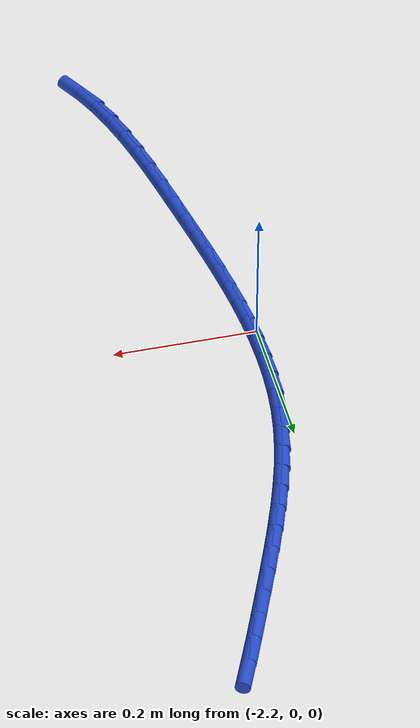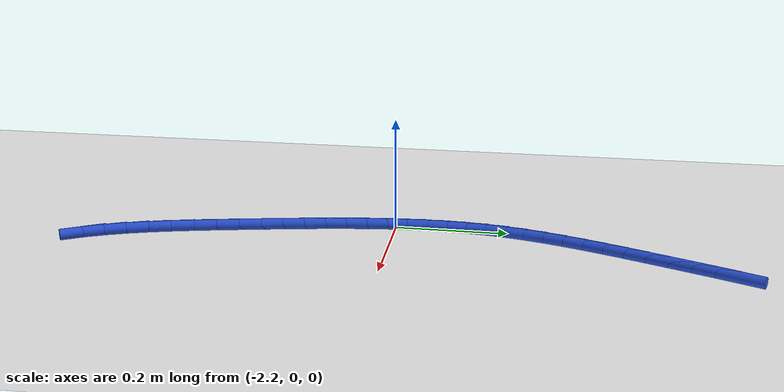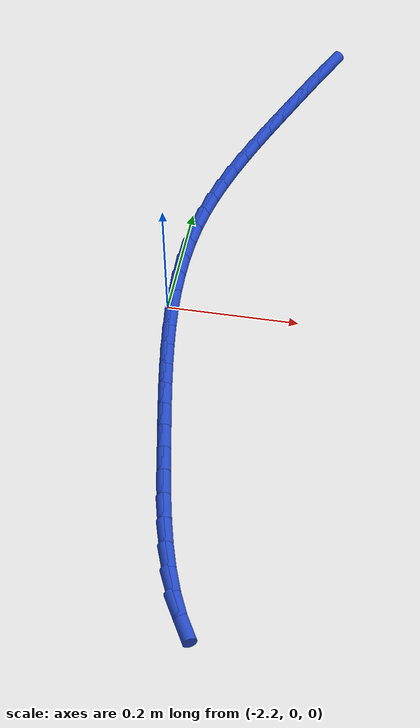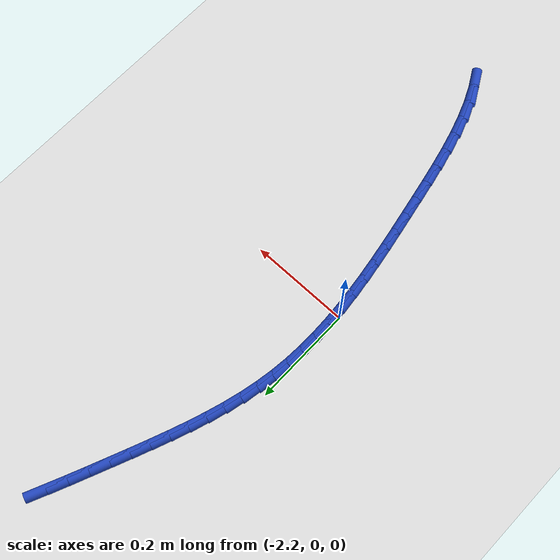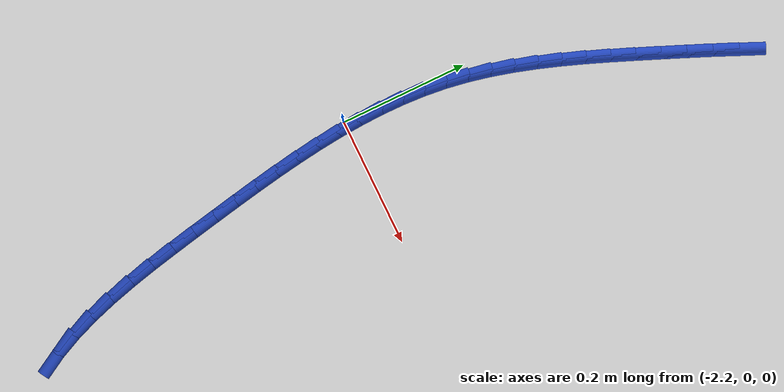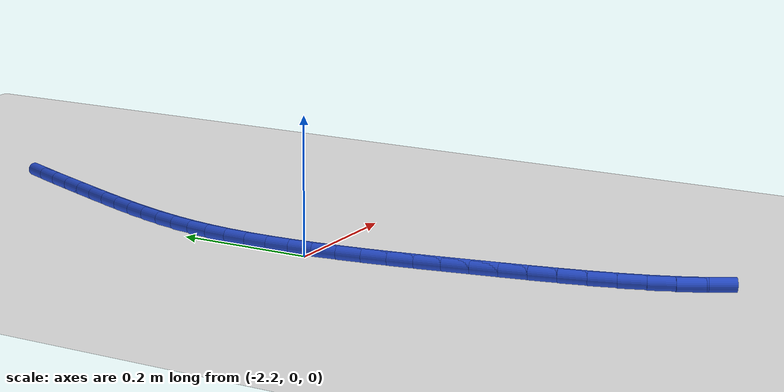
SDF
<sdf version="1.6">
 <world name="default">
  <model name="ground_plane">
   <static>1</static>
   <link name="link">
    <collision name="collision">
     <geometry><plane><normal>0 0 1</normal><size>100 100</size></plane></geometry>
     <surface><friction><ode><mu>100</mu><mu2>50</mu2></ode></friction></surface>
    </collision>
    <visual name="visual">
     <cast_shadows>0</cast_shadows>
     <geometry><plane><normal>0 0 1</normal><size>100 100</size></plane></geometry>
     <material>
      <script><uri>file://media/materials/scripts/gazebo.material</uri><name>Gazebo/WhiteGlow</name></script>
     </material>
    </visual>
   </link>
  </model>
  <model name="line">
   <link name="link_78">
    <pose>-2.039724899684198 0.5842032469601501 0.01 0 1.57 1.1546603331213603</pose>
    <collision name="collision">
     <geometry><cylinder><radius>0.01</radius><length>0.08</length></cylinder></geometry>
    </collision>
    <visual name="visual">
     <material>
      <script><name>Gazebo/Blue</name><uri>file://media/materials/scripts/gazebo.material</uri></script>
     </material>
     <geometry><cylinder><radius>0.01</radius><length>0.08</length></cylinder></geometry>
    </visual>
   </link>
   <link name="link_79">
    <pose>-2.0559129583077382 0.5475741976965427 0.01 0 1.57 1.1677503929884825</pose>
    <collision name="collision">
     <geometry><cylinder><radius>0.01</radius><length>0.08</length></cylinder></geometry>
    </collision>
    <visual name="visual">
     <material>
      <script><name>Gazebo/Blue</name><uri>file://media/materials/scripts/gazebo.material</uri></script>
     </material>
     <geometry><cylinder><radius>0.01</radius><length>0.08</length></cylinder></geometry>
    </visual>
   </link>
   <link name="link_80">
    <pose>-2.0715541158840853 0.510891299024669 0.01 0 1.57 1.1737245022381324</pose>
    <collision name="collision">
     <geometry><cylinder><radius>0.01</radius><length>0.08</length></cylinder></geometry>
    </collision>
    <visual name="visual">
     <material>
      <script><name>Gazebo/Blue</name><uri>file://media/materials/scripts/gazebo.material</uri></script>
     </material>
     <geometry><cylinder><radius>0.01</radius><length>0.08</length></cylinder></geometry>
    </visual>
   </link>
   <link name="link_81">
    <pose>-2.0868060402968833 0.47452054825259055 0.01 0 1.57 1.175988209759713</pose>
    <collision name="collision">
     <geometry><cylinder><radius>0.01</radius><length>0.08</length></cylinder></geometry>
    </collision>
    <visual name="visual">
     <material>
      <script><name>Gazebo/Blue</name><uri>file://media/materials/scripts/gazebo.material</uri></script>
     </material>
     <geometry><cylinder><radius>0.01</radius><length>0.08</length></cylinder></geometry>
    </visual>
   </link>
   <link name="link_82">
    <pose>-2.1017310544813035 0.4387022290538202 0.01 0 1.57 1.1826501950434787</pose>
    <collision name="collision">
     <geometry><cylinder><radius>0.01</radius><length>0.08</length></cylinder></geometry>
    </collision>
    <visual name="visual">
     <material>
      <script><name>Gazebo/Blue</name><uri>file://media/materials/scripts/gazebo.material</uri></script>
     </material>
     <geometry><cylinder><radius>0.01</radius><length>0.08</length></cylinder></geometry>
    </visual>
   </link>
   <link name="link_83">
    <pose>-2.116171339071557 0.4033863644303252 0.01 0 1.57 1.1951134654090376</pose>
    <collision name="collision">
     <geometry><cylinder><radius>0.01</radius><length>0.08</length></cylinder></geometry>
    </collision>
    <visual name="visual">
     <material>
      <script><name>Gazebo/Blue</name><uri>file://media/materials/scripts/gazebo.material</uri></script>
     </material>
     <geometry><cylinder><radius>0.01</radius><length>0.08</length></cylinder></geometry>
    </visual>
   </link>
   <link name="link_84">
    <pose>-2.1299381038356775 0.3684821418682454 0.01 0 1.57 1.2136571490403052</pose>
    <collision name="collision">
     <geometry><cylinder><radius>0.01</radius><length>0.08</length></cylinder></geometry>
    </collision>
    <visual name="visual">
     <material>
      <script><name>Gazebo/Blue</name><uri>file://media/materials/scripts/gazebo.material</uri></script>
     </material>
     <geometry><cylinder><radius>0.01</radius><length>0.08</length></cylinder></geometry>
    </visual>
   </link>
   <link name="link_85">
    <pose>-2.1428425585416986 0.3338987488537224 0.01 0 1.57 1.2385453255192842</pose>
    <collision name="collision">
     <geometry><cylinder><radius>0.01</radius><length>0.08</length></cylinder></geometry>
    </collision>
    <visual name="visual">
     <material>
      <script><name>Gazebo/Blue</name><uri>file://media/materials/scripts/gazebo.material</uri></script>
     </material>
     <geometry><cylinder><radius>0.01</radius><length>0.08</length></cylinder></geometry>
    </visual>
   </link>
   <link name="link_86">
    <pose>-2.1546959129576537 0.299545372872897 0.01 0 1.57 1.2700021255067369</pose>
    <collision name="collision">
     <geometry><cylinder><radius>0.01</radius><length>0.08</length></cylinder></geometry>
    </collision>
    <visual name="visual">
     <material>
      <script><name>Gazebo/Blue</name><uri>file://media/materials/scripts/gazebo.material</uri></script>
     </material>
     <geometry><cylinder><radius>0.01</radius><length>0.08</length></cylinder></geometry>
    </visual>
   </link>
   <link name="link_87">
    <pose>-2.1653093768515785 0.2653312014119097 0.01 0 1.57 1.3081754069231255</pose>
    <collision name="collision">
     <geometry><cylinder><radius>0.01</radius><length>0.08</length></cylinder></geometry>
    </collision>
    <visual name="visual">
     <material>
      <script><name>Gazebo/Blue</name><uri>file://media/materials/scripts/gazebo.material</uri></script>
     </material>
     <geometry><cylinder><radius>0.01</radius><length>0.08</length></cylinder></geometry>
    </visual>
   </link>
   <link name="link_88">
    <pose>-2.1744941599915055 0.23116542195690135 0.01 0 1.57 1.3530889361663747</pose>
    <collision name="collision">
     <geometry><cylinder><radius>0.01</radius><length>0.08</length></cylinder></geometry>
    </collision>
    <visual name="visual">
     <material>
      <script><name>Gazebo/Blue</name><uri>file://media/materials/scripts/gazebo.material</uri></script>
     </material>
     <geometry><cylinder><radius>0.01</radius><length>0.08</length></cylinder></geometry>
    </visual>
   </link>
   <link name="link_89">
    <pose>-2.1820614721454685 0.19695722199401292 0.01 0 1.57 1.4045818100482856</pose>
    <collision name="collision">
     <geometry><cylinder><radius>0.01</radius><length>0.08</length></cylinder></geometry>
    </collision>
    <visual name="visual">
     <material>
      <script><name>Gazebo/Blue</name><uri>file://media/materials/scripts/gazebo.material</uri></script>
     </material>
     <geometry><cylinder><radius>0.01</radius><length>0.08</length></cylinder></geometry>
    </visual>
   </link>
   <link name="link_90">
    <pose>-2.1878226658184774 0.16261581508148082 0.01 0 1.57 1.4598515042055298</pose>
    <collision name="collision">
     <geometry><cylinder><radius>0.01</radius><length>0.08</length></cylinder></geometry>
    </collision>
    <visual name="visual">
     <material>
      <script><name>Gazebo/Blue</name><uri>file://media/materials/scripts/gazebo.material</uri></script>
     </material>
     <geometry><cylinder><radius>0.01</radius><length>0.08</length></cylinder></geometry>
    </visual>
   </link>
   <link name="link_91">
    <pose>-2.1916716500553246 0.1280654944158227 0.01 0 1.57 1.5119010819180472</pose>
    <collision name="collision">
     <geometry><cylinder><radius>0.01</radius><length>0.08</length></cylinder></geometry>
    </collision>
    <visual name="visual">
     <material>
      <script><name>Gazebo/Blue</name><uri>file://media/materials/scripts/gazebo.material</uri></script>
     </material>
     <geometry><cylinder><radius>0.01</radius><length>0.08</length></cylinder></geometry>
    </visual>
   </link>
   <link name="link_92">
    <pose>-2.193723258459866 0.09327090690081233 0.01 0 1.57 1.5592297276331855</pose>
    <collision name="collision">
     <geometry><cylinder><radius>0.01</radius><length>0.08</length></cylinder></geometry>
    </collision>
    <visual name="visual">
     <material>
      <script><name>Gazebo/Blue</name><uri>file://media/materials/scripts/gazebo.material</uri></script>
     </material>
     <geometry><cylinder><radius>0.01</radius><length>0.08</length></cylinder></geometry>
    </visual>
   </link>
   <link name="link_93">
    <pose>-2.194128888597899 0.05820337815182771 0.01 0 1.57 -1.5400178982549504</pose>
    <collision name="collision">
     <geometry><cylinder><radius>0.01</radius><length>0.08</length></cylinder></geometry>
    </collision>
    <visual name="visual">
     <material>
      <script><name>Gazebo/Blue</name><uri>file://media/materials/scripts/gazebo.material</uri></script>
     </material>
     <geometry><cylinder><radius>0.01</radius><length>0.08</length></cylinder></geometry>
    </visual>
   </link>
   <link name="link_94">
    <pose>-2.1930399380352212 0.022834233784245865 0.01 0 1.57 -1.502773364476517</pose>
    <collision name="collision">
     <geometry><cylinder><radius>0.01</radius><length>0.08</length></cylinder></geometry>
    </collision>
    <visual name="visual">
     <material>
      <script><name>Gazebo/Blue</name><uri>file://media/materials/scripts/gazebo.material</uri></script>
     </material>
     <geometry><cylinder><radius>0.01</radius><length>0.08</length></cylinder></geometry>
    </visual>
   </link>
   <link name="link_95">
    <pose>-2.190607804337632 -0.012865200586555126 0.01 0 1.57 -1.4706312713148522</pose>
    <collision name="collision">
     <geometry><cylinder><radius>0.01</radius><length>0.08</length></cylinder></geometry>
    </collision>
    <visual name="visual">
     <material>
      <script><name>Gazebo/Blue</name><uri>file://media/materials/scripts/gazebo.material</uri></script>
     </material>
     <geometry><cylinder><radius>0.01</radius><length>0.08</length></cylinder></geometry>
    </visual>
   </link>
   <link name="link_96">
    <pose>-2.186983885070929 -0.048923599345197556 0.01 0 1.57 -1.44350979088746</pose>
    <collision name="collision">
     <geometry><cylinder><radius>0.01</radius><length>0.08</length></cylinder></geometry>
    </collision>
    <visual name="visual">
     <material>
      <script><name>Gazebo/Blue</name><uri>file://media/materials/scripts/gazebo.material</uri></script>
     </material>
     <geometry><cylinder><radius>0.01</radius><length>0.08</length></cylinder></geometry>
    </visual>
   </link>
   <link name="link_97">
    <pose>-2.182319577800911 -0.08536963687630368 0.01 0 1.57 -1.4212711521867412</pose>
    <collision name="collision">
     <geometry><cylinder><radius>0.01</radius><length>0.08</length></cylinder></geometry>
    </collision>
    <visual name="visual">
     <material>
      <script><name>Gazebo/Blue</name><uri>file://media/materials/scripts/gazebo.material</uri></script>
     </material>
     <geometry><cylinder><radius>0.01</radius><length>0.08</length></cylinder></geometry>
    </visual>
   </link>
   <link name="link_98">
    <pose>-2.176766280093375 -0.12223198756449496 0.01 0 1.57 -1.4037443975102812</pose>
    <collision name="collision">
     <geometry><cylinder><radius>0.01</radius><length>0.08</length></cylinder></geometry>
    </collision>
    <visual name="visual">
     <material>
      <script><name>Gazebo/Blue</name><uri>file://media/materials/scripts/gazebo.material</uri></script>
     </material>
     <geometry><cylinder><radius>0.01</radius><length>0.08</length></cylinder></geometry>
    </visual>
   </link>
   <link name="link_99">
    <pose>-2.1704753895141193 -0.15953932579439534 0.01 0 1.57 -1.3907426514126264</pose>
    <collision name="collision">
     <geometry><cylinder><radius>0.01</radius><length>0.08</length></cylinder></geometry>
    </collision>
    <visual name="visual">
     <material>
      <script><name>Gazebo/Blue</name><uri>file://media/materials/scripts/gazebo.material</uri></script>
     </material>
     <geometry><cylinder><radius>0.01</radius><length>0.08</length></cylinder></geometry>
    </visual>
   </link>
   <link name="link_100">
    <pose>-2.1635983036289432 -0.1973203259506262 0.01 0 1.57 -1.3820752878527591</pose>
    <collision name="collision">
     <geometry><cylinder><radius>0.01</radius><length>0.08</length></cylinder></geometry>
    </collision>
    <visual name="visual">
     <material>
      <script><name>Gazebo/Blue</name><uri>file://media/materials/scripts/gazebo.material</uri></script>
     </material>
     <geometry><cylinder><radius>0.01</radius><length>0.08</length></cylinder></geometry>
    </visual>
   </link>
   <link name="link_101">
    <pose>-2.156286420003644 -0.23560366241780994 0.01 0 1.57 -1.3775547709541065</pose>
    <collision name="collision">
     <geometry><cylinder><radius>0.01</radius><length>0.08</length></cylinder></geometry>
    </collision>
    <visual name="visual">
     <material>
      <script><name>Gazebo/Blue</name><uri>file://media/materials/scripts/gazebo.material</uri></script>
     </material>
     <geometry><cylinder><radius>0.01</radius><length>0.08</length></cylinder></geometry>
    </visual>
   </link>
   <link name="link_102">
    <pose>-2.1486911028516524 -0.2744179780887617 0.01 0 1.57 -1.3742036191164626</pose>
    <collision name="collision">
     <geometry><cylinder><radius>0.01</radius><length>0.08</length></cylinder></geometry>
    </collision>
    <visual name="visual">
     <material>
      <script><name>Gazebo/Blue</name><uri>file://media/materials/scripts/gazebo.material</uri></script>
     </material>
     <geometry><cylinder><radius>0.01</radius><length>0.08</length></cylinder></geometry>
    </visual>
   </link>
   <link name="link_103">
    <pose>-2.140867314727079 -0.31370089195563766 0.01 0 1.57 -1.3630385241538456</pose>
    <collision name="collision">
     <geometry><cylinder><radius>0.01</radius><length>0.08</length></cylinder></geometry>
    </collision>
    <visual name="visual">
     <material>
      <script><name>Gazebo/Blue</name><uri>file://media/materials/scripts/gazebo.material</uri></script>
     </material>
     <geometry><cylinder><radius>0.01</radius><length>0.08</length></cylinder></geometry>
    </visual>
   </link>
   <link name="link_104">
    <pose>-2.1325621448554934 -0.35309932437045943 0.01 0 1.57 -1.3421279433241409</pose>
    <collision name="collision">
     <geometry><cylinder><radius>0.01</radius><length>0.08</length></cylinder></geometry>
    </collision>
    <visual name="visual">
     <material>
      <script><name>Gazebo/Blue</name><uri>file://media/materials/scripts/gazebo.material</uri></script>
     </material>
     <geometry><cylinder><radius>0.01</radius><length>0.08</length></cylinder></geometry>
    </visual>
   </link>
   <link name="link_105">
    <pose>-2.1234613532520403 -0.3922022877197966 0.01 0 1.57 -1.3108849752130842</pose>
    <collision name="collision">
     <geometry><cylinder><radius>0.01</radius><length>0.08</length></cylinder></geometry>
    </collision>
    <visual name="visual">
     <material>
      <script><name>Gazebo/Blue</name><uri>file://media/materials/scripts/gazebo.material</uri></script>
     </material>
     <geometry><cylinder><radius>0.01</radius><length>0.08</length></cylinder></geometry>
    </visual>
   </link>
   <link name="link_106">
    <pose>-2.1132506999318585 -0.4305987943902201 0.01 0 1.57 -1.2682768989366249</pose>
    <collision name="collision">
     <geometry><cylinder><radius>0.01</radius><length>0.08</length></cylinder></geometry>
    </collision>
    <visual name="visual">
     <material>
      <script><name>Gazebo/Blue</name><uri>file://media/materials/scripts/gazebo.material</uri></script>
     </material>
     <geometry><cylinder><radius>0.01</radius><length>0.08</length></cylinder></geometry>
    </visual>
   </link>
   <link name="link_107">
    <pose>-2.101615944910094 -0.46787785676829957 0.01 0 1.57 -1.2128447235602806</pose>
    <collision name="collision">
     <geometry><cylinder><radius>0.01</radius><length>0.08</length></cylinder></geometry>
    </collision>
    <visual name="visual">
     <material>
      <script><name>Gazebo/Blue</name><uri>file://media/materials/scripts/gazebo.material</uri></script>
     </material>
     <geometry><cylinder><radius>0.01</radius><length>0.08</length></cylinder></geometry>
    </visual>
   </link>
   <link name="link_108">
    <pose>-2.0882428482018867 -0.5036284872406047 0.01 0 1.57 -1.1427738785091905</pose>
    <collision name="collision">
     <geometry><cylinder><radius>0.01</radius><length>0.08</length></cylinder></geometry>
    </collision>
    <visual name="visual">
     <material>
      <script><name>Gazebo/Blue</name><uri>file://media/materials/scripts/gazebo.material</uri></script>
     </material>
     <geometry><cylinder><radius>0.01</radius><length>0.08</length></cylinder></geometry>
    </visual>
   </link>
   <link name="link_109">
    <pose>-2.0728171698223794 -0.5374396981937053 0.01 0 1.57 -1.056096766899536</pose>
    <collision name="collision">
     <geometry><cylinder><radius>0.01</radius><length>0.08</length></cylinder></geometry>
    </collision>
    <visual name="visual">
     <material>
      <script><name>Gazebo/Blue</name><uri>file://media/materials/scripts/gazebo.material</uri></script>
     </material>
     <geometry><cylinder><radius>0.01</radius><length>0.08</length></cylinder></geometry>
    </visual>
   </link>
  </model>
 </world>
</sdf>
